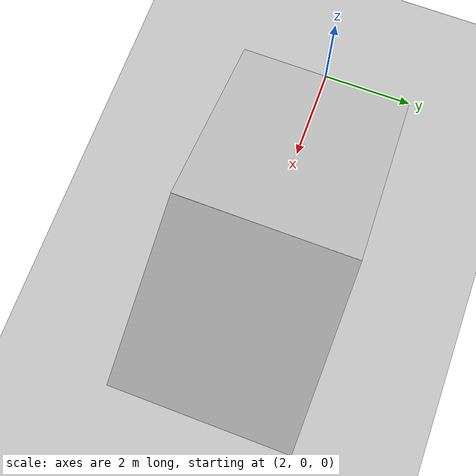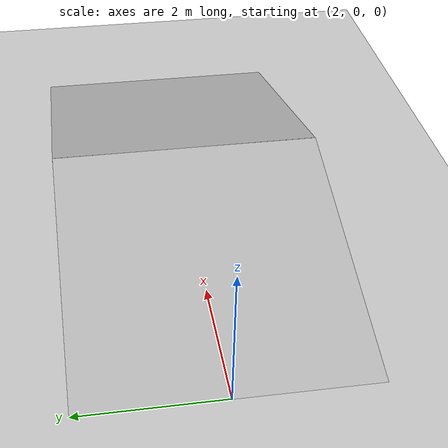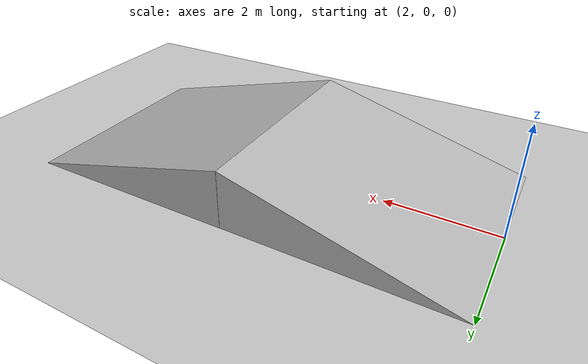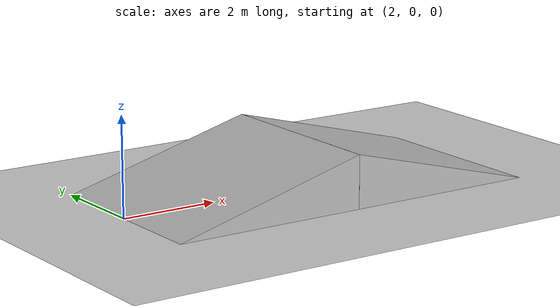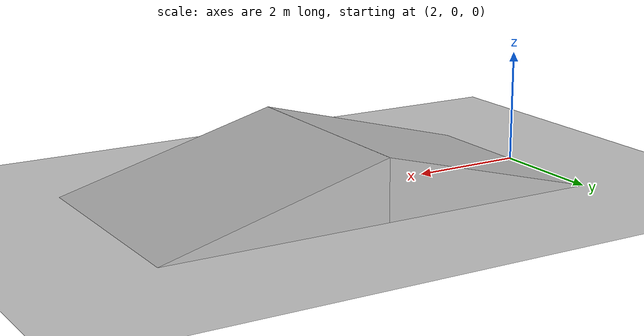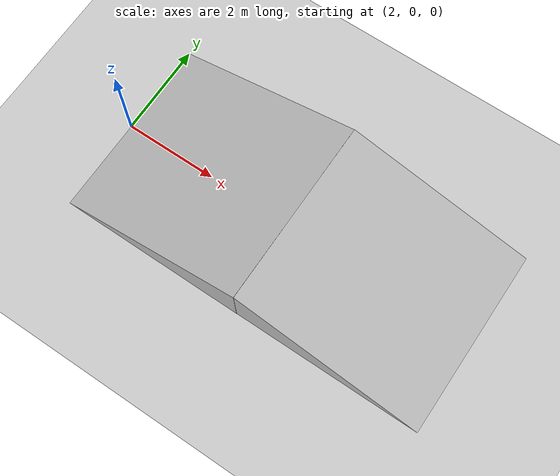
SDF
<?xml version="1.0" ?>
<sdf version="1.4">
  <world name="default">
    <physics type='ode'>
      <gravity>0 0 -9.81</gravity>
      <!-- max step size has to be a multiple of the desired task rate-->
      <max_step_size>0.001</max_step_size>
      <real_time_factor>1</real_time_factor>
    </physics>
    <!-- A global light source -->
    <include>
      <uri>model://sun</uri>
    </include>
    <!-- A ground plane -->
    <include>
      <uri>model://ground_plane</uri>
    </include>
    <include>
      <name>ramp1</name>
      <uri>model://ramp_15</uri>
      <pose>4 0 0 0 0 3.14</pose>
    </include>
    <include>
      <name>ramp2</name>
      <uri>model://ramp_15</uri>
      <pose>8 0 0 0 0 0 </pose>
    </include>

  </world>
</sdf>

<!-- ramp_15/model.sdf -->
<sdf version="1.4">
	<model name="15_degree_ramp">
		<static>true</static>
		<link name="link">
			<pose>0 0 0 0 0 0</pose>
			<collision name="collision">
				<geometry>
					<mesh>
						<uri>model://ramp_45/mesh/ramp_45.dae</uri>
						<scale>2.0 2.0 0.5358</scale>
					</mesh>
				</geometry>
				<surface>
					<friction>
						<ode>
							<mu>10</mu>
							<mu2>10</mu2>
						</ode>
					</friction>
				</surface>
			</collision>
			<visual name="visual">
				<geometry>
					<mesh>
						<uri>model://ramp_45/mesh/ramp_45.dae</uri>
						<scale>2.0 2.0 0.5358</scale>
					</mesh>
				</geometry>
			</visual>
		</link>
	</model>
</sdf>
